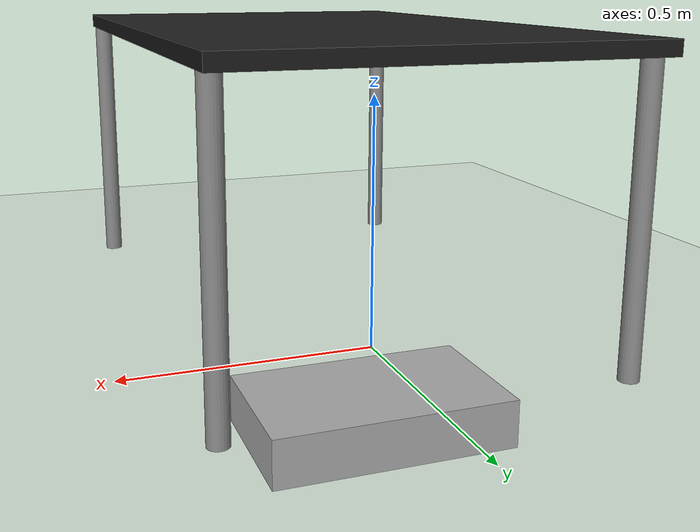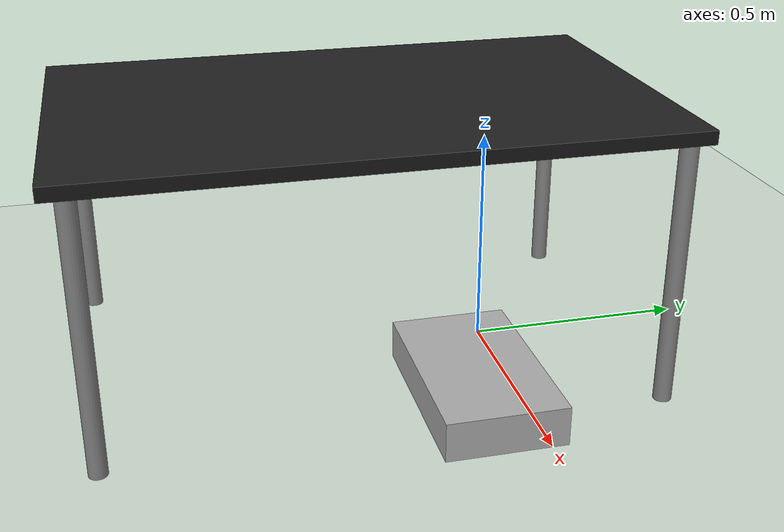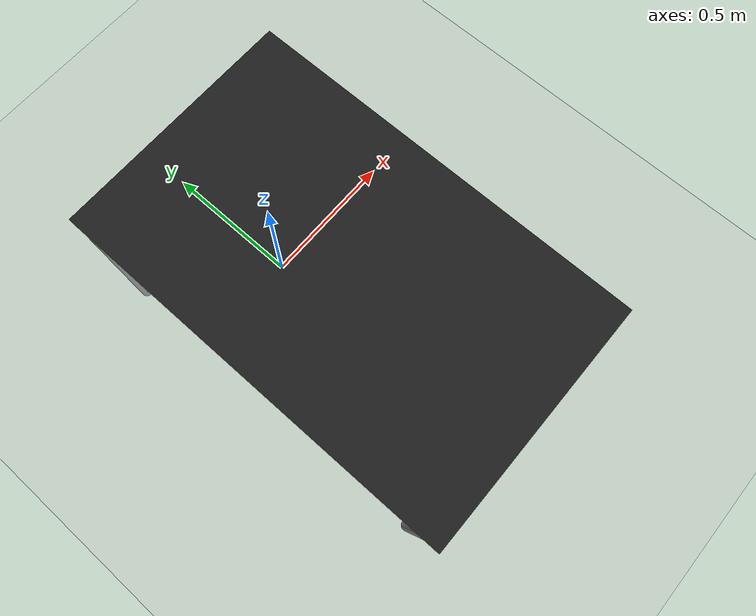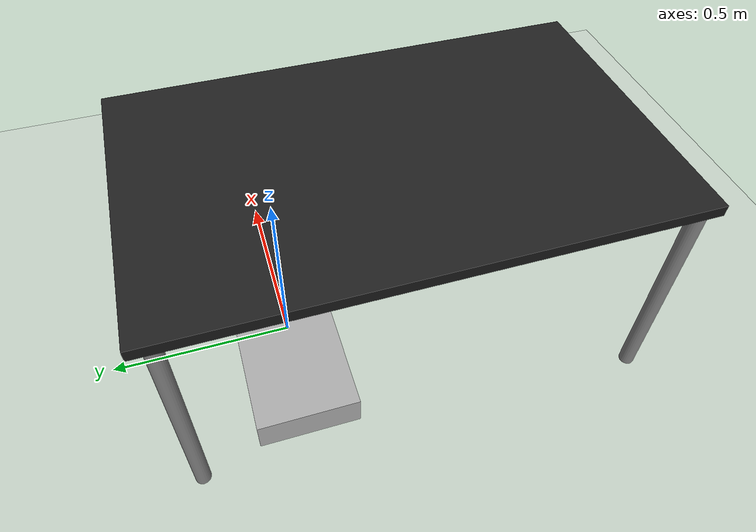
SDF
<sdf version="1.7">
 <world name="default">
  <light name="sun" type="directional">
   <pose>0 0 10 0 -0 0</pose>
   <diffuse>0.8 0.8 0.8 1</diffuse>
   <specular>0.2 0.2 0.2 1</specular>
   <attenuation>
    <range>1000</range>
    <constant>0.9</constant>
    <linear>0.01</linear>
    <quadratic>0.001</quadratic>
   </attenuation>
   <direction>-0.5 0.1 -0.9</direction>
   <spot><inner_angle>0</inner_angle><outer_angle>0</outer_angle><falloff>0</falloff></spot>
  </light>
  <model name="ground_plane">
   <static>1</static>
   <link name="link">
    <collision name="collision">
     <geometry><plane><normal>0 0 1</normal><size>100 100</size></plane></geometry>
     <surface>
      <contact><collide_bitmask>65535</collide_bitmask></contact>
      <friction><ode><mu>100</mu><mu2>50</mu2></ode></friction>
     </surface>
    </collision>
    <visual name="visual">
     <cast_shadows>0</cast_shadows>
     <geometry><plane><normal>0 0 1</normal><size>100 100</size></plane></geometry>
     <material>
      <script><uri>file://media/materials/scripts/gazebo.material</uri><name>Gazebo/Grey</name></script>
     </material>
    </visual>
   </link>
  </model>
  <gravity>0 0 -9.8</gravity>
  <magnetic_field>6e-06 2.3e-05 -4.2e-05</magnetic_field>
  <atmosphere type="adiabatic"/>
  <physics type="ode">
   <max_step_size>0.001</max_step_size>
   <real_time_factor>1</real_time_factor>
   <real_time_update_rate>1000</real_time_update_rate>
  </physics>
  <scene><ambient>0.4 0.4 0.4 1</ambient><background>0.7 0.7 0.7 1</background><shadows>1</shadows></scene>
  <spherical_coordinates>
   <surface_model>EARTH_WGS84</surface_model>
   <latitude_deg>0</latitude_deg>
   <longitude_deg>0</longitude_deg>
   <elevation>0</elevation>
   <heading_deg>0</heading_deg>
  </spherical_coordinates>
  <model name="table">
   <static>true</static>
   <static>1</static>
   <link name="table_link">
    <collision name="surface_c">
     <pose>0 0 0.6 0 -0 0</pose>
     <geometry><box><size>0.8 1.3 0.03</size></box></geometry>
     <surface>
      <contact><ode><kp>1e+15</kp><kd>1e+13</kd></ode></contact>
      <friction><ode><mu>0.6</mu><mu2>0.6</mu2></ode></friction>
     </surface>
    </collision>
    <visual name="visual1">
     <pose>0 0 0.6 0 -0 0</pose>
     <geometry><box><size>0.8 1.3 0.03</size></box></geometry>
     <material>
      <script><uri>file://media/materials/scripts/gazebo.material</uri><name>Gazebo/Black</name></script>
     </material>
    </visual>
    <collision name="front_left_leg_c">
     <pose>0.38 0.6 0.3 0 -0 0</pose>
     <geometry><cylinder><radius>0.02</radius><length>0.6</length></cylinder></geometry>
     <surface>
      <contact><ode><kp>1e+15</kp><kd>1e+13</kd></ode></contact>
      <friction><ode><mu>0.6</mu><mu2>0.6</mu2></ode></friction>
     </surface>
    </collision>
    <visual name="front_left_leg">
     <pose>0.38 0.6 0.3 0 -0 0</pose>
     <geometry><cylinder><radius>0.02</radius><length>0.6</length></cylinder></geometry>
     <material>
      <script><uri>file://media/materials/scripts/gazebo.material</uri><name>Gazebo/Grey</name></script>
     </material>
    </visual>
    <collision name="front_right_leg_c">
     <pose>0.38 -0.6 0.3 0 -0 0</pose>
     <geometry><cylinder><radius>0.02</radius><length>0.6</length></cylinder></geometry>
     <surface>
      <contact><ode><kp>1e+15</kp><kd>1e+13</kd></ode></contact>
      <friction><ode><mu>0.6</mu><mu2>0.6</mu2></ode></friction>
     </surface>
    </collision>
    <visual name="front_right_leg">
     <pose>0.38 -0.6 0.3 0 -0 0</pose>
     <geometry><cylinder><radius>0.02</radius><length>0.6</length></cylinder></geometry>
     <material>
      <script><uri>file://media/materials/scripts/gazebo.material</uri><name>Gazebo/Grey</name></script>
     </material>
    </visual>
    <collision name="back_right_leg_c">
     <pose>-0.38 -0.6 0.3 0 -0 0</pose>
     <geometry><cylinder><radius>0.02</radius><length>0.6</length></cylinder></geometry>
     <surface>
      <contact><ode><kp>1e+15</kp><kd>1e+13</kd></ode></contact>
      <friction><ode><mu>0.6</mu><mu2>0.6</mu2></ode></friction>
     </surface>
    </collision>
    <visual name="back_right_leg">
     <pose>-0.38 -0.6 0.3 0 -0 0</pose>
     <geometry><cylinder><radius>0.02</radius><length>0.6</length></cylinder></geometry>
     <material>
      <script><uri>file://media/materials/scripts/gazebo.material</uri><name>Gazebo/Grey</name></script>
     </material>
    </visual>
    <collision name="back_left_leg_c">
     <pose>-0.38 0.6 0.3 0 -0 0</pose>
     <geometry><cylinder><radius>0.02</radius><length>0.6</length></cylinder></geometry>
     <surface>
      <contact><ode><kp>1e+15</kp><kd>1e+13</kd></ode></contact>
      <friction><ode><mu>0.6</mu><mu2>0.6</mu2></ode></friction>
     </surface>
    </collision>
    <visual name="back_left_leg">
     <pose>-0.38 0.6 0.3 0 -0 0</pose>
     <geometry><cylinder><radius>0.02</radius><length>0.6</length></cylinder></geometry>
     <material>
      <script><uri>file://media/materials/scripts/gazebo.material</uri><name>Gazebo/Grey</name></script>
     </material>
    </visual>
   </link>
   <pose>0 -0.3 0 0 -0 0</pose>
  </model>
  <model name="selfObject">
   <pose>0 -0 -0.135 0 0 -1e-06</pose>
   <static>true</static>
   <link name="selfObject_link">
    <collision name="obj_collision">
     <geometry><box><size>0.5 0.3 0.1</size></box></geometry>
     <surface><contact><ode><kp>1e+15</kp><kd>1e+13</kd></ode></contact></surface>
    </collision>
    <visual name="obj_visual">
     <geometry><box><size>0.5 0.3 0.1</size></box></geometry>
     <material>
      <script><name>Gazebo/Grey</name><uri>file://media/materials/scripts/gazebo.material</uri></script>
     </material>
    </visual>
    <inertial>
     <inertia><ixx>1</ixx><ixy>0</ixy><ixz>0</ixz><iyy>1</iyy><iyz>0</iyz><izz>1</izz></inertia>
     <mass>1</mass>
    </inertial>
   </link>
  </model>
 </world>
</sdf>
